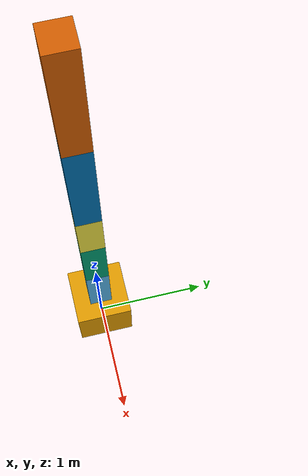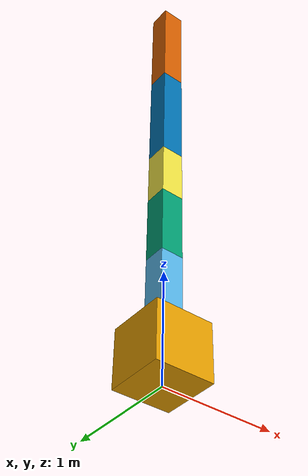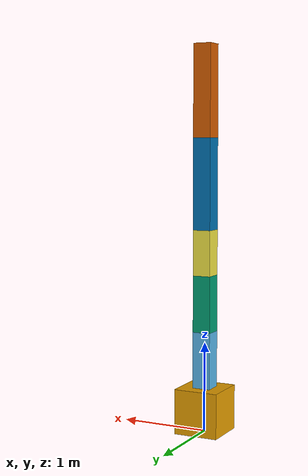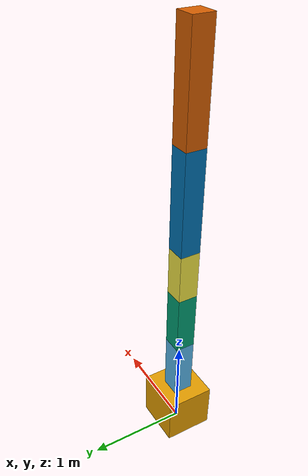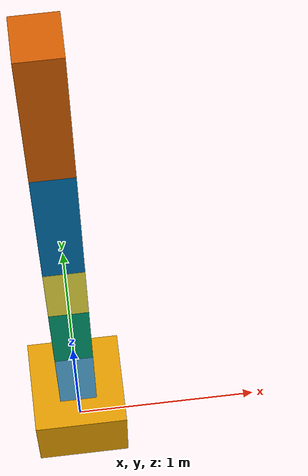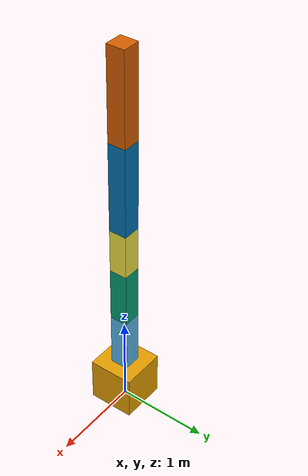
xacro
<?xml version="1.0"?>
<robot name="xacro_bot1" xmlns:xacro="http://www.ros.org/wiki/xacro">
    <!-- Parameters -->
    <xacro:property name="a" value="0.2" />

    <!-- Links to be added -->
    <!-- Add a link -->
    <xacro:macro name="add_link" params="length name parent axis *origin">
        <!-- Physical link -->
        <link name="${name}_link">
            <visual>
                <origin xyz="0.0 0.0 ${length/2}"/>
                <geometry>
                    <box size="${a} ${a} ${length}"/>
                </geometry>
            </visual>
            <material name="red">
                <color rgba="1.0 0.0 0.0 0.0"/>
            </material>
        </link>
        <!-- Joint between parent and link -->
        <joint name="${name}_joint" type="revolute">
            <xacro:insert_block name="origin" />
            <parent link="${parent}" />
            <child link="${name}_link" />
            <axis xyz="${axis}" />
            <limit lower="${-pi}" upper="${pi}" effort="30" velocity="10" />
        </joint>
    </xacro:macro>
    <!-- Base link -->
    <link name="base_link">
        <visual>
            <origin xyz="0 0 0.25" />
            <geometry>
                <box size="0.5 0.5 0.5" />
            </geometry>
        </visual>
    </link>
    <!-- Link 1 -->
    <xacro:property name="l1_length" value="0.625" />
    <xacro:add_link name="l1" length="${l1_length}" parent="base_link" axis="0 1 0" >
        <origin xyz="0 0 0.5" rpy="0.0 0.0 0.0"/>
    </xacro:add_link>
    <!-- Link 2 -->
    <xacro:property name="l2_length" value="0.625" />
    <xacro:add_link name="l2" length="${l2_length}" parent="l1_link" axis="1 0 0">
        <origin xyz="0.0 0.0 ${l1_length}"/>
    </xacro:add_link>
    <!-- Link 3 -->
    <xacro:property name="l3_length" value="0.5" />
    <xacro:add_link name="l3" length="${l3_length}" parent="l2_link" axis="0 0 1" >
        <origin xyz="0.0 0.0 ${l2_length}"/>
    </xacro:add_link>
    <!-- Link 4 -->
    <xacro:property name="l4_length" value="1" />
    <xacro:add_link name="l4" length="${l4_length}" parent="l3_link" axis="1 0 0" >
        <origin xyz="0.0 0.0 ${l3_length}"/>
    </xacro:add_link>
    <!-- Link 5 -->
    <xacro:property name="l5_length" value="1" />
    <xacro:add_link name="l5" length="${l5_length}" parent="l4_link" axis="0 1 0" >
        <origin xyz="0.0 0.0 ${l4_length}"/>
    </xacro:add_link>
</robot>
